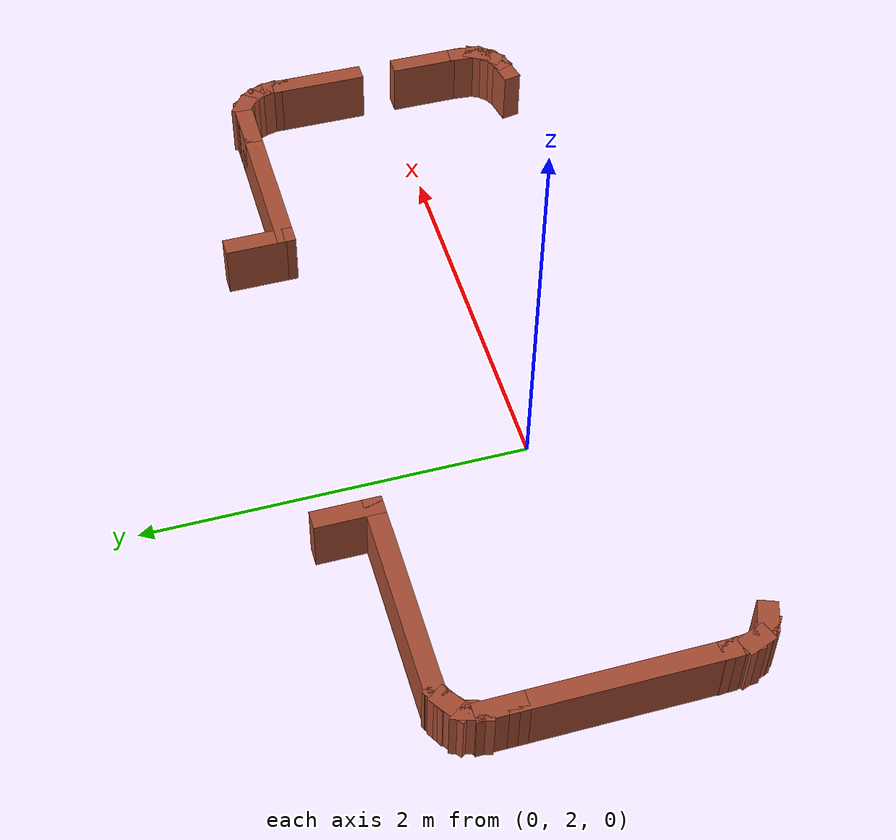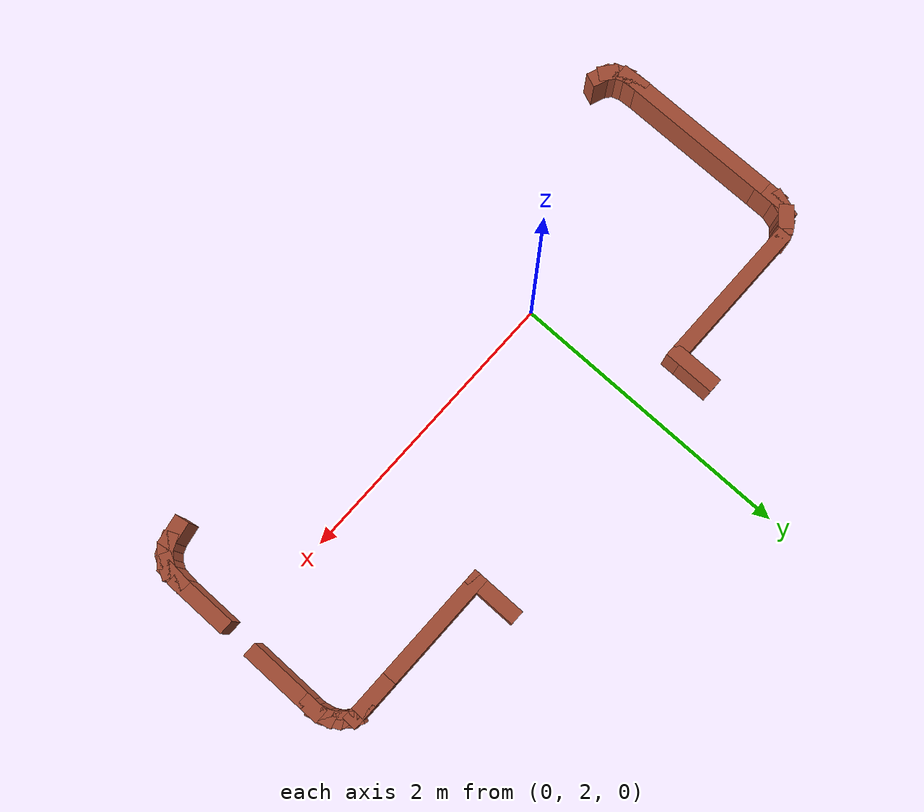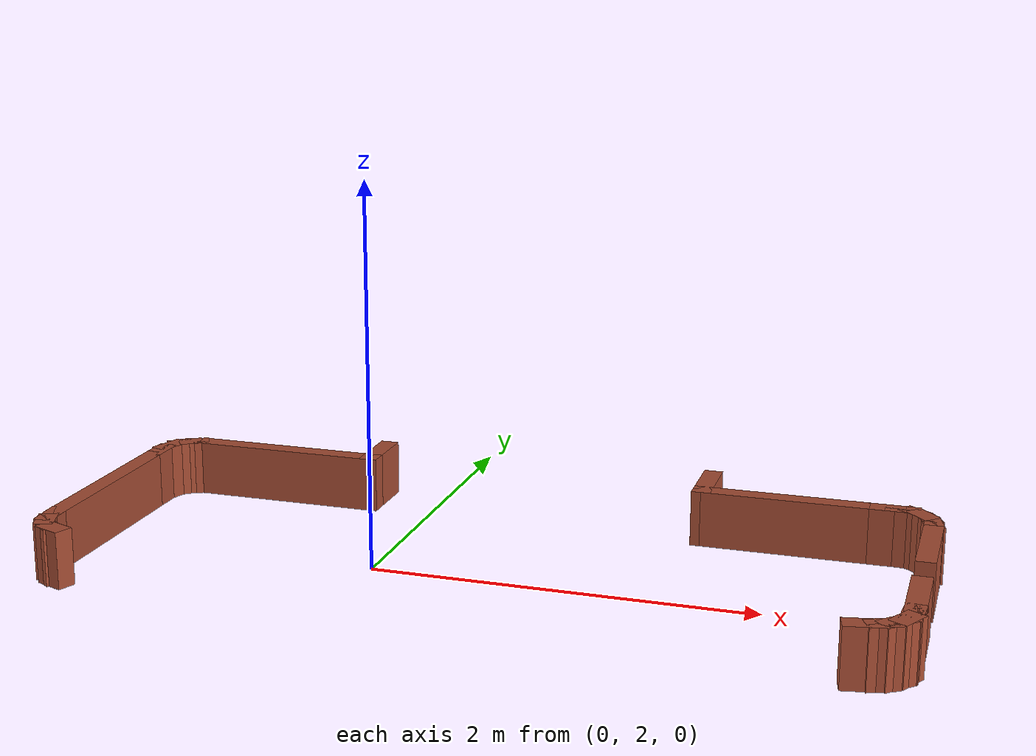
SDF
<sdf version="1.6">
 <model name="walls">
  <link name="Wall_33">
   <pose>-0.352583 3.02287 0 0 0 -1.5708</pose>
   <visual name="Wall_33_Visual">
    <pose>0 0 0.15 0 -0 0</pose>
    <geometry><box><size>0.357602 0.1 0.3</size></box></geometry>
    <material>
     <script><uri>file://media/materials/scripts/gazebo.material</uri><name>Gazebo/Bricks</name></script>
     <ambient>1 1 1 1</ambient>
    </material>
    <meta><layer>0</layer></meta>
   </visual>
   <collision name="Wall_33_Collision">
    <pose>0 0 0.15 0 -0 0</pose>
    <geometry><box><size>0.357602 0.1 0.3</size></box></geometry>
    <surface>
     <friction>
      <ode><mu>1</mu><mu2>1</mu2><fdir1>0 0 0</fdir1><slip1>0</slip1><slip2>0</slip2></ode>
      <torsional>
       <coefficient>1</coefficient>
       <patch_radius>0</patch_radius>
       <surface_radius>0</surface_radius>
       <use_patch_radius>1</use_patch_radius>
       <ode><slip>0</slip></ode>
      </torsional>
     </friction>
     <bounce><restitution_coefficient>0</restitution_coefficient><threshold>1e+06</threshold></bounce>
     <contact>
      <collide_without_contact>0</collide_without_contact>
      <collide_without_contact_bitmask>1</collide_without_contact_bitmask>
      <collide_bitmask>1</collide_bitmask>
      <ode>
       <soft_cfm>0</soft_cfm>
       <soft_erp>0.2</soft_erp>
       <kp>1e+13</kp>
       <kd>1</kd>
       <max_vel>0.01</max_vel>
       <min_depth>0</min_depth>
      </ode>
      <bullet>
       <split_impulse>1</split_impulse>
       <split_impulse_penetration_threshold>-0.01</split_impulse_penetration_threshold>
       <soft_cfm>0</soft_cfm>
       <soft_erp>0.2</soft_erp>
       <kp>1e+13</kp>
       <kd>1</kd>
      </bullet>
     </contact>
    </surface>
   </collision>
  </link>
  <link name="Wall_34">
   <pose>-0.854083 2.89387 0 0 -0 3.14159</pose>
   <visual name="Wall_34_Visual">
    <pose>0 0 0.15 0 -0 0</pose>
    <geometry><box><size>1.10348 0.1 0.3</size></box></geometry>
    <material>
     <script><uri>file://media/materials/scripts/gazebo.material</uri><name>Gazebo/Bricks</name></script>
     <ambient>1 1 1 1</ambient>
    </material>
    <meta><layer>0</layer></meta>
   </visual>
   <collision name="Wall_34_Collision">
    <pose>0 0 0.15 0 -0 0</pose>
    <geometry><box><size>1.10348 0.1 0.3</size></box></geometry>
    <surface>
     <friction>
      <ode><mu>1</mu><mu2>1</mu2><fdir1>0 0 0</fdir1><slip1>0</slip1><slip2>0</slip2></ode>
      <torsional>
       <coefficient>1</coefficient>
       <patch_radius>0</patch_radius>
       <surface_radius>0</surface_radius>
       <use_patch_radius>1</use_patch_radius>
       <ode><slip>0</slip></ode>
      </torsional>
     </friction>
     <bounce><restitution_coefficient>0</restitution_coefficient><threshold>1e+06</threshold></bounce>
     <contact>
      <collide_without_contact>0</collide_without_contact>
      <collide_without_contact_bitmask>1</collide_without_contact_bitmask>
      <collide_bitmask>1</collide_bitmask>
      <ode>
       <soft_cfm>0</soft_cfm>
       <soft_erp>0.2</soft_erp>
       <kp>1e+13</kp>
       <kd>1</kd>
       <max_vel>0.01</max_vel>
       <min_depth>0</min_depth>
      </ode>
      <bullet>
       <split_impulse>1</split_impulse>
       <split_impulse_penetration_threshold>-0.01</split_impulse_penetration_threshold>
       <soft_cfm>0</soft_cfm>
       <soft_erp>0.2</soft_erp>
       <kp>1e+13</kp>
       <kd>1</kd>
      </bullet>
     </contact>
    </surface>
   </collision>
  </link>
  <link name="Wall_36">
   <pose>-1.42108 2.87687 0 0 0 -2.69014</pose>
   <visual name="Wall_36_Visual">
    <pose>0 0 0.15 0 -0 0</pose>
    <geometry><box><size>0.136312 0.1 0.3</size></box></geometry>
    <material>
     <script><uri>file://media/materials/scripts/gazebo.material</uri><name>Gazebo/Bricks</name></script>
     <ambient>1 1 1 1</ambient>
    </material>
    <meta><layer>0</layer></meta>
   </visual>
   <collision name="Wall_36_Collision">
    <pose>0 0 0.15 0 -0 0</pose>
    <geometry><box><size>0.136312 0.1 0.3</size></box></geometry>
    <surface>
     <friction>
      <ode><mu>1</mu><mu2>1</mu2><fdir1>0 0 0</fdir1><slip1>0</slip1><slip2>0</slip2></ode>
      <torsional>
       <coefficient>1</coefficient>
       <patch_radius>0</patch_radius>
       <surface_radius>0</surface_radius>
       <use_patch_radius>1</use_patch_radius>
       <ode><slip>0</slip></ode>
      </torsional>
     </friction>
     <bounce><restitution_coefficient>0</restitution_coefficient><threshold>1e+06</threshold></bounce>
     <contact>
      <collide_without_contact>0</collide_without_contact>
      <collide_without_contact_bitmask>1</collide_without_contact_bitmask>
      <collide_bitmask>1</collide_bitmask>
      <ode>
       <soft_cfm>0</soft_cfm>
       <soft_erp>0.2</soft_erp>
       <kp>1e+13</kp>
       <kd>1</kd>
       <max_vel>0.01</max_vel>
       <min_depth>0</min_depth>
      </ode>
      <bullet>
       <split_impulse>1</split_impulse>
       <split_impulse_penetration_threshold>-0.01</split_impulse_penetration_threshold>
       <soft_cfm>0</soft_cfm>
       <soft_erp>0.2</soft_erp>
       <kp>1e+13</kp>
       <kd>1</kd>
      </bullet>
     </contact>
    </surface>
   </collision>
  </link>
  <link name="Wall_37">
   <pose>-1.45158 2.85937 0 0 0 -2.54539</pose>
   <visual name="Wall_37_Visual">
    <pose>0 0 0.15 0 -0 0</pose>
    <geometry><box><size>0.133838 0.1 0.3</size></box></geometry>
    <material>
     <script><uri>file://media/materials/scripts/gazebo.material</uri><name>Gazebo/Bricks</name></script>
     <ambient>1 1 1 1</ambient>
    </material>
    <meta><layer>0</layer></meta>
   </visual>
   <collision name="Wall_37_Collision">
    <pose>0 0 0.15 0 -0 0</pose>
    <geometry><box><size>0.133838 0.1 0.3</size></box></geometry>
    <surface>
     <friction>
      <ode><mu>1</mu><mu2>1</mu2><fdir1>0 0 0</fdir1><slip1>0</slip1><slip2>0</slip2></ode>
      <torsional>
       <coefficient>1</coefficient>
       <patch_radius>0</patch_radius>
       <surface_radius>0</surface_radius>
       <use_patch_radius>1</use_patch_radius>
       <ode><slip>0</slip></ode>
      </torsional>
     </friction>
     <bounce><restitution_coefficient>0</restitution_coefficient><threshold>1e+06</threshold></bounce>
     <contact>
      <collide_without_contact>0</collide_without_contact>
      <collide_without_contact_bitmask>1</collide_without_contact_bitmask>
      <collide_bitmask>1</collide_bitmask>
      <ode>
       <soft_cfm>0</soft_cfm>
       <soft_erp>0.2</soft_erp>
       <kp>1e+13</kp>
       <kd>1</kd>
       <max_vel>0.01</max_vel>
       <min_depth>0</min_depth>
      </ode>
      <bullet>
       <split_impulse>1</split_impulse>
       <split_impulse_penetration_threshold>-0.01</split_impulse_penetration_threshold>
       <soft_cfm>0</soft_cfm>
       <soft_erp>0.2</soft_erp>
       <kp>1e+13</kp>
       <kd>1</kd>
      </bullet>
     </contact>
    </surface>
   </collision>
  </link>
  <link name="Wall_38">
   <pose>-1.48958 2.83087 0 0 0 -2.47195</pose>
   <visual name="Wall_38_Visual">
    <pose>0 0 0.15 0 -0 0</pose>
    <geometry><box><size>0.161164 0.1 0.3</size></box></geometry>
    <material>
     <script><uri>file://media/materials/scripts/gazebo.material</uri><name>Gazebo/Bricks</name></script>
     <ambient>1 1 1 1</ambient>
    </material>
    <meta><layer>0</layer></meta>
   </visual>
   <collision name="Wall_38_Collision">
    <pose>0 0 0.15 0 -0 0</pose>
    <geometry><box><size>0.161164 0.1 0.3</size></box></geometry>
    <surface>
     <friction>
      <ode><mu>1</mu><mu2>1</mu2><fdir1>0 0 0</fdir1><slip1>0</slip1><slip2>0</slip2></ode>
      <torsional>
       <coefficient>1</coefficient>
       <patch_radius>0</patch_radius>
       <surface_radius>0</surface_radius>
       <use_patch_radius>1</use_patch_radius>
       <ode><slip>0</slip></ode>
      </torsional>
     </friction>
     <bounce><restitution_coefficient>0</restitution_coefficient><threshold>1e+06</threshold></bounce>
     <contact>
      <collide_without_contact>0</collide_without_contact>
      <collide_without_contact_bitmask>1</collide_without_contact_bitmask>
      <collide_bitmask>1</collide_bitmask>
      <ode>
       <soft_cfm>0</soft_cfm>
       <soft_erp>0.2</soft_erp>
       <kp>1e+13</kp>
       <kd>1</kd>
       <max_vel>0.01</max_vel>
       <min_depth>0</min_depth>
      </ode>
      <bullet>
       <split_impulse>1</split_impulse>
       <split_impulse_penetration_threshold>-0.01</split_impulse_penetration_threshold>
       <soft_cfm>0</soft_cfm>
       <soft_erp>0.2</soft_erp>
       <kp>1e+13</kp>
       <kd>1</kd>
      </bullet>
     </contact>
    </surface>
   </collision>
  </link>
  <link name="Wall_39">
   <pose>-1.52908 2.76337 0 0 0 -1.88013</pose>
   <visual name="Wall_39_Visual">
    <pose>0 0 0.15 0 -0 0</pose>
    <geometry><box><size>0.201833 0.1 0.3</size></box></geometry>
    <material>
     <script><uri>file://media/materials/scripts/gazebo.material</uri><name>Gazebo/Bricks</name></script>
     <ambient>1 1 1 1</ambient>
    </material>
    <meta><layer>0</layer></meta>
   </visual>
   <collision name="Wall_39_Collision">
    <pose>0 0 0.15 0 -0 0</pose>
    <geometry><box><size>0.201833 0.1 0.3</size></box></geometry>
    <surface>
     <friction>
      <ode><mu>1</mu><mu2>1</mu2><fdir1>0 0 0</fdir1><slip1>0</slip1><slip2>0</slip2></ode>
      <torsional>
       <coefficient>1</coefficient>
       <patch_radius>0</patch_radius>
       <surface_radius>0</surface_radius>
       <use_patch_radius>1</use_patch_radius>
       <ode><slip>0</slip></ode>
      </torsional>
     </friction>
     <bounce><restitution_coefficient>0</restitution_coefficient><threshold>1e+06</threshold></bounce>
     <contact>
      <collide_without_contact>0</collide_without_contact>
      <collide_without_contact_bitmask>1</collide_without_contact_bitmask>
      <collide_bitmask>1</collide_bitmask>
      <ode>
       <soft_cfm>0</soft_cfm>
       <soft_erp>0.2</soft_erp>
       <kp>1e+13</kp>
       <kd>1</kd>
       <max_vel>0.01</max_vel>
       <min_depth>0</min_depth>
      </ode>
      <bullet>
       <split_impulse>1</split_impulse>
       <split_impulse_penetration_threshold>-0.01</split_impulse_penetration_threshold>
       <soft_cfm>0</soft_cfm>
       <soft_erp>0.2</soft_erp>
       <kp>1e+13</kp>
       <kd>1</kd>
      </bullet>
     </contact>
    </surface>
   </collision>
  </link>
  <link name="Wall_40">
   <pose>-1.54458 2.63987 0 0 0 -1.5708</pose>
   <visual name="Wall_40_Visual">
    <pose>0 0 0.15 0 -0 0</pose>
    <geometry><box><size>0.25 0.1 0.3</size></box></geometry>
    <material>
     <script><uri>file://media/materials/scripts/gazebo.material</uri><name>Gazebo/Bricks</name></script>
     <ambient>1 1 1 1</ambient>
    </material>
    <meta><layer>0</layer></meta>
   </visual>
   <collision name="Wall_40_Collision">
    <pose>0 0 0.15 0 -0 0</pose>
    <geometry><box><size>0.25 0.1 0.3</size></box></geometry>
    <surface>
     <friction>
      <ode><mu>1</mu><mu2>1</mu2><fdir1>0 0 0</fdir1><slip1>0</slip1><slip2>0</slip2></ode>
      <torsional>
       <coefficient>1</coefficient>
       <patch_radius>0</patch_radius>
       <surface_radius>0</surface_radius>
       <use_patch_radius>1</use_patch_radius>
       <ode><slip>0</slip></ode>
      </torsional>
     </friction>
     <bounce><restitution_coefficient>0</restitution_coefficient><threshold>1e+06</threshold></bounce>
     <contact>
      <collide_without_contact>0</collide_without_contact>
      <collide_without_contact_bitmask>1</collide_without_contact_bitmask>
      <collide_bitmask>1</collide_bitmask>
      <ode>
       <soft_cfm>0</soft_cfm>
       <soft_erp>0.2</soft_erp>
       <kp>1e+13</kp>
       <kd>1</kd>
       <max_vel>0.01</max_vel>
       <min_depth>0</min_depth>
      </ode>
      <bullet>
       <split_impulse>1</split_impulse>
       <split_impulse_penetration_threshold>-0.01</split_impulse_penetration_threshold>
       <soft_cfm>0</soft_cfm>
       <soft_erp>0.2</soft_erp>
       <kp>1e+13</kp>
       <kd>1</kd>
      </bullet>
     </contact>
    </surface>
   </collision>
  </link>
  <link name="Wall_41">
   <pose>-1.54358 2.06137 0 0 0 -1.56881</pose>
   <visual name="Wall_41_Visual">
    <pose>0 0 0.15 0 -0 0</pose>
    <geometry><box><size>1.107 0.1 0.3</size></box></geometry>
    <material>
     <script><uri>file://media/materials/scripts/gazebo.material</uri><name>Gazebo/Bricks</name></script>
     <ambient>1 1 1 1</ambient>
    </material>
    <meta><layer>0</layer></meta>
   </visual>
   <collision name="Wall_41_Collision">
    <pose>0 0 0.15 0 -0 0</pose>
    <geometry><box><size>1.107 0.1 0.3</size></box></geometry>
    <surface>
     <friction>
      <ode><mu>1</mu><mu2>1</mu2><fdir1>0 0 0</fdir1><slip1>0</slip1><slip2>0</slip2></ode>
      <torsional>
       <coefficient>1</coefficient>
       <patch_radius>0</patch_radius>
       <surface_radius>0</surface_radius>
       <use_patch_radius>1</use_patch_radius>
       <ode><slip>0</slip></ode>
      </torsional>
     </friction>
     <bounce><restitution_coefficient>0</restitution_coefficient><threshold>1e+06</threshold></bounce>
     <contact>
      <collide_without_contact>0</collide_without_contact>
      <collide_without_contact_bitmask>1</collide_without_contact_bitmask>
      <collide_bitmask>1</collide_bitmask>
      <ode>
       <soft_cfm>0</soft_cfm>
       <soft_erp>0.2</soft_erp>
       <kp>1e+13</kp>
       <kd>1</kd>
       <max_vel>0.01</max_vel>
       <min_depth>0</min_depth>
      </ode>
      <bullet>
       <split_impulse>1</split_impulse>
       <split_impulse_penetration_threshold>-0.01</split_impulse_penetration_threshold>
       <soft_cfm>0</soft_cfm>
       <soft_erp>0.2</soft_erp>
       <kp>1e+13</kp>
       <kd>1</kd>
      </bullet>
     </contact>
    </surface>
   </collision>
  </link>
  <link name="Wall_42">
   <pose>-1.53958 1.50687 0 0 0 -1.51204</pose>
   <visual name="Wall_42_Visual">
    <pose>0 0 0.15 0 -0 0</pose>
    <geometry><box><size>0.2018 0.1 0.3</size></box></geometry>
    <material>
     <script><uri>file://media/materials/scripts/gazebo.material</uri><name>Gazebo/Bricks</name></script>
     <ambient>1 1 1 1</ambient>
    </material>
    <meta><layer>0</layer></meta>
   </visual>
   <collision name="Wall_42_Collision">
    <pose>0 0 0.15 0 -0 0</pose>
    <geometry><box><size>0.2018 0.1 0.3</size></box></geometry>
    <surface>
     <friction>
      <ode><mu>1</mu><mu2>1</mu2><fdir1>0 0 0</fdir1><slip1>0</slip1><slip2>0</slip2></ode>
      <torsional>
       <coefficient>1</coefficient>
       <patch_radius>0</patch_radius>
       <surface_radius>0</surface_radius>
       <use_patch_radius>1</use_patch_radius>
       <ode><slip>0</slip></ode>
      </torsional>
     </friction>
     <bounce><restitution_coefficient>0</restitution_coefficient><threshold>1e+06</threshold></bounce>
     <contact>
      <collide_without_contact>0</collide_without_contact>
      <collide_without_contact_bitmask>1</collide_without_contact_bitmask>
      <collide_bitmask>1</collide_bitmask>
      <ode>
       <soft_cfm>0</soft_cfm>
       <soft_erp>0.2</soft_erp>
       <kp>1e+13</kp>
       <kd>1</kd>
       <max_vel>0.01</max_vel>
       <min_depth>0</min_depth>
      </ode>
      <bullet>
       <split_impulse>1</split_impulse>
       <split_impulse_penetration_threshold>-0.01</split_impulse_penetration_threshold>
       <soft_cfm>0</soft_cfm>
       <soft_erp>0.2</soft_erp>
       <kp>1e+13</kp>
       <kd>1</kd>
      </bullet>
     </contact>
    </surface>
   </collision>
  </link>
  <link name="Wall_43">
   <pose>-1.52658 1.42887 0 0 0 -1.21609</pose>
   <visual name="Wall_43_Visual">
    <pose>0 0 0.15 0 -0 0</pose>
    <geometry><box><size>0.157996 0.1 0.3</size></box></geometry>
    <material>
     <script><uri>file://media/materials/scripts/gazebo.material</uri><name>Gazebo/Bricks</name></script>
     <ambient>1 1 1 1</ambient>
    </material>
    <meta><layer>0</layer></meta>
   </visual>
   <collision name="Wall_43_Collision">
    <pose>0 0 0.15 0 -0 0</pose>
    <geometry><box><size>0.157996 0.1 0.3</size></box></geometry>
    <surface>
     <friction>
      <ode><mu>1</mu><mu2>1</mu2><fdir1>0 0 0</fdir1><slip1>0</slip1><slip2>0</slip2></ode>
      <torsional>
       <coefficient>1</coefficient>
       <patch_radius>0</patch_radius>
       <surface_radius>0</surface_radius>
       <use_patch_radius>1</use_patch_radius>
       <ode><slip>0</slip></ode>
      </torsional>
     </friction>
     <bounce><restitution_coefficient>0</restitution_coefficient><threshold>1e+06</threshold></bounce>
     <contact>
      <collide_without_contact>0</collide_without_contact>
      <collide_without_contact_bitmask>1</collide_without_contact_bitmask>
      <collide_bitmask>1</collide_bitmask>
      <ode>
       <soft_cfm>0</soft_cfm>
       <soft_erp>0.2</soft_erp>
       <kp>1e+13</kp>
       <kd>1</kd>
       <max_vel>0.01</max_vel>
       <min_depth>0</min_depth>
      </ode>
      <bullet>
       <split_impulse>1</split_impulse>
       <split_impulse_penetration_threshold>-0.01</split_impulse_penetration_threshold>
       <soft_cfm>0</soft_cfm>
       <soft_erp>0.2</soft_erp>
       <kp>1e+13</kp>
       <kd>1</kd>
      </bullet>
     </contact>
    </surface>
   </collision>
  </link>
  <link name="Wall_45">
   <pose>-1.47208 1.35537 0 0 0 -0.678662</pose>
   <visual name="Wall_45_Visual">
    <pose>0 0 0.15 0 -0 0</pose>
    <geometry><box><size>0.140426 0.1 0.3</size></box></geometry>
    <material>
     <script><uri>file://media/materials/scripts/gazebo.material</uri><name>Gazebo/Bricks</name></script>
     <ambient>1 1 1 1</ambient>
    </material>
    <meta><layer>0</layer></meta>
   </visual>
   <collision name="Wall_45_Collision">
    <pose>0 0 0.15 0 -0 0</pose>
    <geometry><box><size>0.140426 0.1 0.3</size></box></geometry>
    <surface>
     <friction>
      <ode><mu>1</mu><mu2>1</mu2><fdir1>0 0 0</fdir1><slip1>0</slip1><slip2>0</slip2></ode>
      <torsional>
       <coefficient>1</coefficient>
       <patch_radius>0</patch_radius>
       <surface_radius>0</surface_radius>
       <use_patch_radius>1</use_patch_radius>
       <ode><slip>0</slip></ode>
      </torsional>
     </friction>
     <bounce><restitution_coefficient>0</restitution_coefficient><threshold>1e+06</threshold></bounce>
     <contact>
      <collide_without_contact>0</collide_without_contact>
      <collide_without_contact_bitmask>1</collide_without_contact_bitmask>
      <collide_bitmask>1</collide_bitmask>
      <ode>
       <soft_cfm>0</soft_cfm>
       <soft_erp>0.2</soft_erp>
       <kp>1e+13</kp>
       <kd>1</kd>
       <max_vel>0.01</max_vel>
       <min_depth>0</min_depth>
      </ode>
      <bullet>
       <split_impulse>1</split_impulse>
       <split_impulse_penetration_threshold>-0.01</split_impulse_penetration_threshold>
       <soft_cfm>0</soft_cfm>
       <soft_erp>0.2</soft_erp>
       <kp>1e+13</kp>
       <kd>1</kd>
      </bullet>
     </contact>
    </surface>
   </collision>
  </link>
  <link name="Wall_46">
   <pose>-1.42708 1.33137 0 0 0 -0.371709</pose>
   <visual name="Wall_46_Visual">
    <pose>0 0 0.15 0 -0 0</pose>
    <geometry><box><size>0.162952 0.1 0.3</size></box></geometry>
    <material>
     <script><uri>file://media/materials/scripts/gazebo.material</uri><name>Gazebo/Bricks</name></script>
     <ambient>1 1 1 1</ambient>
    </material>
    <meta><layer>0</layer></meta>
   </visual>
   <collision name="Wall_46_Collision">
    <pose>0 0 0.15 0 -0 0</pose>
    <geometry><box><size>0.162952 0.1 0.3</size></box></geometry>
    <surface>
     <friction>
      <ode><mu>1</mu><mu2>1</mu2><fdir1>0 0 0</fdir1><slip1>0</slip1><slip2>0</slip2></ode>
      <torsional>
       <coefficient>1</coefficient>
       <patch_radius>0</patch_radius>
       <surface_radius>0</surface_radius>
       <use_patch_radius>1</use_patch_radius>
       <ode><slip>0</slip></ode>
      </torsional>
     </friction>
     <bounce><restitution_coefficient>0</restitution_coefficient><threshold>1e+06</threshold></bounce>
     <contact>
      <collide_without_contact>0</collide_without_contact>
      <collide_without_contact_bitmask>1</collide_without_contact_bitmask>
      <collide_bitmask>1</collide_bitmask>
      <ode>
       <soft_cfm>0</soft_cfm>
       <soft_erp>0.2</soft_erp>
       <kp>1e+13</kp>
       <kd>1</kd>
       <max_vel>0.01</max_vel>
       <min_depth>0</min_depth>
      </ode>
      <bullet>
       <split_impulse>1</split_impulse>
       <split_impulse_penetration_threshold>-0.01</split_impulse_penetration_threshold>
       <soft_cfm>0</soft_cfm>
       <soft_erp>0.2</soft_erp>
       <kp>1e+13</kp>
       <kd>1</kd>
      </bullet>
     </contact>
    </surface>
   </collision>
  </link>
  <link name="Wall_73">
   <pose>1.52899 3.03515 0 0 0 -1.56677</pose>
   <visual name="Wall_73_Visual">
    <pose>0 0 0.15 0 -0 0</pose>
    <geometry><box><size>0.383454 0.1 0.3</size></box></geometry>
    <material>
     <script><uri>file://media/materials/scripts/gazebo.material</uri><name>Gazebo/Bricks</name></script>
     <ambient>1 1 1 1</ambient>
    </material>
    <meta><layer>0</layer></meta>
   </visual>
   <collision name="Wall_73_Collision">
    <pose>0 0 0.15 0 -0 0</pose>
    <geometry><box><size>0.383454 0.1 0.3</size></box></geometry>
    <surface>
     <friction>
      <ode><mu>1</mu><mu2>1</mu2><fdir1>0 0 0</fdir1><slip1>0</slip1><slip2>0</slip2></ode>
      <torsional>
       <coefficient>1</coefficient>
       <patch_radius>0</patch_radius>
       <surface_radius>0</surface_radius>
       <use_patch_radius>1</use_patch_radius>
       <ode><slip>0</slip></ode>
      </torsional>
     </friction>
     <bounce><restitution_coefficient>0</restitution_coefficient><threshold>1e+06</threshold></bounce>
     <contact>
      <collide_without_contact>0</collide_without_contact>
      <collide_without_contact_bitmask>1</collide_without_contact_bitmask>
      <collide_bitmask>1</collide_bitmask>
      <ode>
       <soft_cfm>0</soft_cfm>
       <soft_erp>0.2</soft_erp>
       <kp>1e+13</kp>
       <kd>1</kd>
       <max_vel>0.01</max_vel>
       <min_depth>0</min_depth>
      </ode>
      <bullet>
       <split_impulse>1</split_impulse>
       <split_impulse_penetration_threshold>-0.01</split_impulse_penetration_threshold>
       <soft_cfm>0</soft_cfm>
       <soft_erp>0.2</soft_erp>
       <kp>1e+13</kp>
       <kd>1</kd>
      </bullet>
     </contact>
    </surface>
   </collision>
  </link>
  <link name="Wall_74">
   <pose>1.9399 2.89342 0 0 -0 0</pose>
   <visual name="Wall_74_Visual">
    <pose>0 0 0.15 0 -0 0</pose>
    <geometry><box><size>0.920691 0.1 0.3</size></box></geometry>
    <material>
     <script><uri>file://media/materials/scripts/gazebo.material</uri><name>Gazebo/Bricks</name></script>
     <ambient>1 1 1 1</ambient>
    </material>
    <meta><layer>0</layer></meta>
   </visual>
   <collision name="Wall_74_Collision">
    <pose>0 0 0.15 0 -0 0</pose>
    <geometry><box><size>0.920691 0.1 0.3</size></box></geometry>
    <surface>
     <friction>
      <ode><mu>1</mu><mu2>1</mu2><fdir1>0 0 0</fdir1><slip1>0</slip1><slip2>0</slip2></ode>
      <torsional>
       <coefficient>1</coefficient>
       <patch_radius>0</patch_radius>
       <surface_radius>0</surface_radius>
       <use_patch_radius>1</use_patch_radius>
       <ode><slip>0</slip></ode>
      </torsional>
     </friction>
     <bounce><restitution_coefficient>0</restitution_coefficient><threshold>1e+06</threshold></bounce>
     <contact>
      <collide_without_contact>0</collide_without_contact>
      <collide_without_contact_bitmask>1</collide_without_contact_bitmask>
      <collide_bitmask>1</collide_bitmask>
      <ode>
       <soft_cfm>0</soft_cfm>
       <soft_erp>0.2</soft_erp>
       <kp>1e+13</kp>
       <kd>1</kd>
       <max_vel>0.01</max_vel>
       <min_depth>0</min_depth>
      </ode>
      <bullet>
       <split_impulse>1</split_impulse>
       <split_impulse_penetration_threshold>-0.01</split_impulse_penetration_threshold>
       <soft_cfm>0</soft_cfm>
       <soft_erp>0.2</soft_erp>
       <kp>1e+13</kp>
       <kd>1</kd>
      </bullet>
     </contact>
    </surface>
   </collision>
  </link>
  <link name="Wall_75">
   <pose>2.44144 2.89342 0 0 -0 0</pose>
   <visual name="Wall_75_Visual">
    <pose>0 0 0.15 0 -0 0</pose>
    <geometry><box><size>0.278231 0.1 0.3</size></box></geometry>
    <material>
     <script><uri>file://media/materials/scripts/gazebo.material</uri><name>Gazebo/Bricks</name></script>
     <ambient>1 1 1 1</ambient>
    </material>
    <meta><layer>0</layer></meta>
   </visual>
   <collision name="Wall_75_Collision">
    <pose>0 0 0.15 0 -0 0</pose>
    <geometry><box><size>0.278231 0.1 0.3</size></box></geometry>
    <surface>
     <friction>
      <ode><mu>1</mu><mu2>1</mu2><fdir1>0 0 0</fdir1><slip1>0</slip1><slip2>0</slip2></ode>
      <torsional>
       <coefficient>1</coefficient>
       <patch_radius>0</patch_radius>
       <surface_radius>0</surface_radius>
       <use_patch_radius>1</use_patch_radius>
       <ode><slip>0</slip></ode>
      </torsional>
     </friction>
     <bounce><restitution_coefficient>0</restitution_coefficient><threshold>1e+06</threshold></bounce>
     <contact>
      <collide_without_contact>0</collide_without_contact>
      <collide_without_contact_bitmask>1</collide_without_contact_bitmask>
      <collide_bitmask>1</collide_bitmask>
      <ode>
       <soft_cfm>0</soft_cfm>
       <soft_erp>0.2</soft_erp>
       <kp>1e+13</kp>
       <kd>1</kd>
       <max_vel>0.01</max_vel>
       <min_depth>0</min_depth>
      </ode>
      <bullet>
       <split_impulse>1</split_impulse>
       <split_impulse_penetration_threshold>-0.01</split_impulse_penetration_threshold>
       <soft_cfm>0</soft_cfm>
       <soft_erp>0.2</soft_erp>
       <kp>1e+13</kp>
       <kd>1</kd>
      </bullet>
     </contact>
    </surface>
   </collision>
  </link>
  <link name="Wall_76">
   <pose>2.56795 2.89265 0 0 0 -0.019606</pose>
   <visual name="Wall_76_Visual">
    <pose>0 0 0.15 0 -0 0</pose>
    <geometry><box><size>0.178952 0.1 0.3</size></box></geometry>
    <material>
     <script><uri>file://media/materials/scripts/gazebo.material</uri><name>Gazebo/Bricks</name></script>
     <ambient>1 1 1 1</ambient>
    </material>
    <meta><layer>0</layer></meta>
   </visual>
   <collision name="Wall_76_Collision">
    <pose>0 0 0.15 0 -0 0</pose>
    <geometry><box><size>0.178952 0.1 0.3</size></box></geometry>
    <surface>
     <friction>
      <ode><mu>1</mu><mu2>1</mu2><fdir1>0 0 0</fdir1><slip1>0</slip1><slip2>0</slip2></ode>
      <torsional>
       <coefficient>1</coefficient>
       <patch_radius>0</patch_radius>
       <surface_radius>0</surface_radius>
       <use_patch_radius>1</use_patch_radius>
       <ode><slip>0</slip></ode>
      </torsional>
     </friction>
     <bounce><restitution_coefficient>0</restitution_coefficient><threshold>1e+06</threshold></bounce>
     <contact>
      <collide_without_contact>0</collide_without_contact>
      <collide_without_contact_bitmask>1</collide_without_contact_bitmask>
      <collide_bitmask>1</collide_bitmask>
      <ode>
       <soft_cfm>0</soft_cfm>
       <soft_erp>0.2</soft_erp>
       <kp>1e+13</kp>
       <kd>1</kd>
       <max_vel>0.01</max_vel>
       <min_depth>0</min_depth>
      </ode>
      <bullet>
       <split_impulse>1</split_impulse>
       <split_impulse_penetration_threshold>-0.01</split_impulse_penetration_threshold>
       <soft_cfm>0</soft_cfm>
       <soft_erp>0.2</soft_erp>
       <kp>1e+13</kp>
       <kd>1</kd>
      </bullet>
     </contact>
    </surface>
   </collision>
  </link>
  <link name="Wall_77">
   <pose>2.62942 2.87637 0 0 0 -0.61377</pose>
   <visual name="Wall_77_Visual">
    <pose>0 0 0.15 0 -0 0</pose>
    <geometry><box><size>0.153882 0.1 0.3</size></box></geometry>
    <material>
     <script><uri>file://media/materials/scripts/gazebo.material</uri><name>Gazebo/Bricks</name></script>
     <ambient>1 1 1 1</ambient>
    </material>
    <meta><layer>0</layer></meta>
   </visual>
   <collision name="Wall_77_Collision">
    <pose>0 0 0.15 0 -0 0</pose>
    <geometry><box><size>0.153882 0.1 0.3</size></box></geometry>
    <surface>
     <friction>
      <ode><mu>1</mu><mu2>1</mu2><fdir1>0 0 0</fdir1><slip1>0</slip1><slip2>0</slip2></ode>
      <torsional>
       <coefficient>1</coefficient>
       <patch_radius>0</patch_radius>
       <surface_radius>0</surface_radius>
       <use_patch_radius>1</use_patch_radius>
       <ode><slip>0</slip></ode>
      </torsional>
     </friction>
     <bounce><restitution_coefficient>0</restitution_coefficient><threshold>1e+06</threshold></bounce>
     <contact>
      <collide_without_contact>0</collide_without_contact>
      <collide_without_contact_bitmask>1</collide_without_contact_bitmask>
      <collide_bitmask>1</collide_bitmask>
      <ode>
       <soft_cfm>0</soft_cfm>
       <soft_erp>0.2</soft_erp>
       <kp>1e+13</kp>
       <kd>1</kd>
       <max_vel>0.01</max_vel>
       <min_depth>0</min_depth>
      </ode>
      <bullet>
       <split_impulse>1</split_impulse>
       <split_impulse_penetration_threshold>-0.01</split_impulse_penetration_threshold>
       <soft_cfm>0</soft_cfm>
       <soft_erp>0.2</soft_erp>
       <kp>1e+13</kp>
       <kd>1</kd>
      </bullet>
     </contact>
    </surface>
   </collision>
  </link>
  <link name="Wall_78">
   <pose>2.67142 2.83887 0 0 0 -0.832981</pose>
   <visual name="Wall_78_Visual">
    <pose>0 0 0.15 0 -0 0</pose>
    <geometry><box><size>0.159636 0.1 0.3</size></box></geometry>
    <material>
     <script><uri>file://media/materials/scripts/gazebo.material</uri><name>Gazebo/Bricks</name></script>
     <ambient>1 1 1 1</ambient>
    </material>
    <meta><layer>0</layer></meta>
   </visual>
   <collision name="Wall_78_Collision">
    <pose>0 0 0.15 0 -0 0</pose>
    <geometry><box><size>0.159636 0.1 0.3</size></box></geometry>
    <surface>
     <friction>
      <ode><mu>1</mu><mu2>1</mu2><fdir1>0 0 0</fdir1><slip1>0</slip1><slip2>0</slip2></ode>
      <torsional>
       <coefficient>1</coefficient>
       <patch_radius>0</patch_radius>
       <surface_radius>0</surface_radius>
       <use_patch_radius>1</use_patch_radius>
       <ode><slip>0</slip></ode>
      </torsional>
     </friction>
     <bounce><restitution_coefficient>0</restitution_coefficient><threshold>1e+06</threshold></bounce>
     <contact>
      <collide_without_contact>0</collide_without_contact>
      <collide_without_contact_bitmask>1</collide_without_contact_bitmask>
      <collide_bitmask>1</collide_bitmask>
      <ode>
       <soft_cfm>0</soft_cfm>
       <soft_erp>0.2</soft_erp>
       <kp>1e+13</kp>
       <kd>1</kd>
       <max_vel>0.01</max_vel>
       <min_depth>0</min_depth>
      </ode>
      <bullet>
       <split_impulse>1</split_impulse>
       <split_impulse_penetration_threshold>-0.01</split_impulse_penetration_threshold>
       <soft_cfm>0</soft_cfm>
       <soft_erp>0.2</soft_erp>
       <kp>1e+13</kp>
       <kd>1</kd>
      </bullet>
     </contact>
    </surface>
   </collision>
  </link>
  <link name="Wall_79">
   <pose>2.70292 2.79487 0 0 0 -1.08913</pose>
   <visual name="Wall_79_Visual">
    <pose>0 0 0.15 0 -0 0</pose>
    <geometry><box><size>0.149409 0.1 0.3</size></box></geometry>
    <material>
     <script><uri>file://media/materials/scripts/gazebo.material</uri><name>Gazebo/Bricks</name></script>
     <ambient>1 1 1 1</ambient>
    </material>
    <meta><layer>0</layer></meta>
   </visual>
   <collision name="Wall_79_Collision">
    <pose>0 0 0.15 0 -0 0</pose>
    <geometry><box><size>0.149409 0.1 0.3</size></box></geometry>
    <surface>
     <friction>
      <ode><mu>1</mu><mu2>1</mu2><fdir1>0 0 0</fdir1><slip1>0</slip1><slip2>0</slip2></ode>
      <torsional>
       <coefficient>1</coefficient>
       <patch_radius>0</patch_radius>
       <surface_radius>0</surface_radius>
       <use_patch_radius>1</use_patch_radius>
       <ode><slip>0</slip></ode>
      </torsional>
     </friction>
     <bounce><restitution_coefficient>0</restitution_coefficient><threshold>1e+06</threshold></bounce>
     <contact>
      <collide_without_contact>0</collide_without_contact>
      <collide_without_contact_bitmask>1</collide_without_contact_bitmask>
      <collide_bitmask>1</collide_bitmask>
      <ode>
       <soft_cfm>0</soft_cfm>
       <soft_erp>0.2</soft_erp>
       <kp>1e+13</kp>
       <kd>1</kd>
       <max_vel>0.01</max_vel>
       <min_depth>0</min_depth>
      </ode>
      <bullet>
       <split_impulse>1</split_impulse>
       <split_impulse_penetration_threshold>-0.01</split_impulse_penetration_threshold>
       <soft_cfm>0</soft_cfm>
       <soft_erp>0.2</soft_erp>
       <kp>1e+13</kp>
       <kd>1</kd>
      </bullet>
     </contact>
    </surface>
   </collision>
  </link>
  <link name="Wall_80">
   <pose>2.72442 2.73387 0 0 0 -1.31979</pose>
   <visual name="Wall_80_Visual">
    <pose>0 0 0.15 0 -0 0</pose>
    <geometry><box><size>0.180523 0.1 0.3</size></box></geometry>
    <material>
     <script><uri>file://media/materials/scripts/gazebo.material</uri><name>Gazebo/Bricks</name></script>
     <ambient>1 1 1 1</ambient>
    </material>
    <meta><layer>0</layer></meta>
   </visual>
   <collision name="Wall_80_Collision">
    <pose>0 0 0.15 0 -0 0</pose>
    <geometry><box><size>0.180523 0.1 0.3</size></box></geometry>
    <surface>
     <friction>
      <ode><mu>1</mu><mu2>1</mu2><fdir1>0 0 0</fdir1><slip1>0</slip1><slip2>0</slip2></ode>
      <torsional>
       <coefficient>1</coefficient>
       <patch_radius>0</patch_radius>
       <surface_radius>0</surface_radius>
       <use_patch_radius>1</use_patch_radius>
       <ode><slip>0</slip></ode>
      </torsional>
     </friction>
     <bounce><restitution_coefficient>0</restitution_coefficient><threshold>1e+06</threshold></bounce>
     <contact>
      <collide_without_contact>0</collide_without_contact>
      <collide_without_contact_bitmask>1</collide_without_contact_bitmask>
      <collide_bitmask>1</collide_bitmask>
      <ode>
       <soft_cfm>0</soft_cfm>
       <soft_erp>0.2</soft_erp>
       <kp>1e+13</kp>
       <kd>1</kd>
       <max_vel>0.01</max_vel>
       <min_depth>0</min_depth>
      </ode>
      <bullet>
       <split_impulse>1</split_impulse>
       <split_impulse_penetration_threshold>-0.01</split_impulse_penetration_threshold>
       <soft_cfm>0</soft_cfm>
       <soft_erp>0.2</soft_erp>
       <kp>1e+13</kp>
       <kd>1</kd>
      </bullet>
     </contact>
    </surface>
   </collision>
  </link>
  <link name="Wall_81">
   <pose>2.73442 2.66637 0 0 0 -1.5708</pose>
   <visual name="Wall_81_Visual">
    <pose>0 0 0.15 0 -0 0</pose>
    <geometry><box><size>0.157 0.1 0.3</size></box></geometry>
    <material>
     <script><uri>file://media/materials/scripts/gazebo.material</uri><name>Gazebo/Bricks</name></script>
     <ambient>1 1 1 1</ambient>
    </material>
    <meta><layer>0</layer></meta>
   </visual>
   <collision name="Wall_81_Collision">
    <pose>0 0 0.15 0 -0 0</pose>
    <geometry><box><size>0.157 0.1 0.3</size></box></geometry>
    <surface>
     <friction>
      <ode><mu>1</mu><mu2>1</mu2><fdir1>0 0 0</fdir1><slip1>0</slip1><slip2>0</slip2></ode>
      <torsional>
       <coefficient>1</coefficient>
       <patch_radius>0</patch_radius>
       <surface_radius>0</surface_radius>
       <use_patch_radius>1</use_patch_radius>
       <ode><slip>0</slip></ode>
      </torsional>
     </friction>
     <bounce><restitution_coefficient>0</restitution_coefficient><threshold>1e+06</threshold></bounce>
     <contact>
      <collide_without_contact>0</collide_without_contact>
      <collide_without_contact_bitmask>1</collide_without_contact_bitmask>
      <collide_bitmask>1</collide_bitmask>
      <ode>
       <soft_cfm>0</soft_cfm>
       <soft_erp>0.2</soft_erp>
       <kp>1e+13</kp>
       <kd>1</kd>
       <max_vel>0.01</max_vel>
       <min_depth>0</min_depth>
      </ode>
      <bullet>
       <split_impulse>1</split_impulse>
       <split_impulse_penetration_threshold>-0.01</split_impulse_penetration_threshold>
       <soft_cfm>0</soft_cfm>
       <soft_erp>0.2</soft_erp>
       <kp>1e+13</kp>
       <kd>1</kd>
      </bullet>
     </contact>
    </surface>
   </collision>
  </link>
  <link name="Wall_82">
   <pose>2.73403 2.42058 0 0 0 -1.57255</pose>
   <visual name="Wall_82_Visual">
    <pose>0 0 0.15 0 -0 0</pose>
    <geometry><box><size>0.53458 0.1 0.3</size></box></geometry>
    <material>
     <script><uri>file://media/materials/scripts/gazebo.material</uri><name>Gazebo/Bricks</name></script>
     <ambient>1 1 1 1</ambient>
    </material>
    <meta><layer>0</layer></meta>
   </visual>
   <collision name="Wall_82_Collision">
    <pose>0 0 0.15 0 -0 0</pose>
    <geometry><box><size>0.53458 0.1 0.3</size></box></geometry>
    <surface>
     <friction>
      <ode><mu>1</mu><mu2>1</mu2><fdir1>0 0 0</fdir1><slip1>0</slip1><slip2>0</slip2></ode>
      <torsional>
       <coefficient>1</coefficient>
       <patch_radius>0</patch_radius>
       <surface_radius>0</surface_radius>
       <use_patch_radius>1</use_patch_radius>
       <ode><slip>0</slip></ode>
      </torsional>
     </friction>
     <bounce><restitution_coefficient>0</restitution_coefficient><threshold>1e+06</threshold></bounce>
     <contact>
      <collide_without_contact>0</collide_without_contact>
      <collide_without_contact_bitmask>1</collide_without_contact_bitmask>
      <collide_bitmask>1</collide_bitmask>
      <ode>
       <soft_cfm>0</soft_cfm>
       <soft_erp>0.2</soft_erp>
       <kp>1e+13</kp>
       <kd>1</kd>
       <max_vel>0.01</max_vel>
       <min_depth>0</min_depth>
      </ode>
      <bullet>
       <split_impulse>1</split_impulse>
       <split_impulse_penetration_threshold>-0.01</split_impulse_penetration_threshold>
       <soft_cfm>0</soft_cfm>
       <soft_erp>0.2</soft_erp>
       <kp>1e+13</kp>
       <kd>1</kd>
      </bullet>
     </contact>
    </surface>
   </collision>
  </link>
  <link name="Wall_85">
   <pose>2.73356 1.73771 0 0 0 -1.5708</pose>
   <visual name="Wall_85_Visual">
    <pose>0 0 0.15 0 -0 0</pose>
    <geometry><box><size>0.45 0.1 0.3</size></box></geometry>
    <material>
     <script><uri>file://media/materials/scripts/gazebo.material</uri><name>Gazebo/Bricks</name></script>
     <ambient>1 1 1 1</ambient>
    </material>
    <meta><layer>0</layer></meta>
   </visual>
   <collision name="Wall_85_Collision">
    <pose>0 0 0.15 0 -0 0</pose>
    <geometry><box><size>0.45 0.1 0.3</size></box></geometry>
    <surface>
     <friction>
      <ode><mu>1</mu><mu2>1</mu2><fdir1>0 0 0</fdir1><slip1>0</slip1><slip2>0</slip2></ode>
      <torsional>
       <coefficient>1</coefficient>
       <patch_radius>0</patch_radius>
       <surface_radius>0</surface_radius>
       <use_patch_radius>1</use_patch_radius>
       <ode><slip>0</slip></ode>
      </torsional>
     </friction>
     <bounce><restitution_coefficient>0</restitution_coefficient><threshold>1e+06</threshold></bounce>
     <contact>
      <collide_without_contact>0</collide_without_contact>
      <collide_without_contact_bitmask>1</collide_without_contact_bitmask>
      <collide_bitmask>1</collide_bitmask>
      <ode>
       <soft_cfm>0</soft_cfm>
       <soft_erp>0.2</soft_erp>
       <kp>1e+13</kp>
       <kd>1</kd>
       <max_vel>0.01</max_vel>
       <min_depth>0</min_depth>
      </ode>
      <bullet>
       <split_impulse>1</split_impulse>
       <split_impulse_penetration_threshold>-0.01</split_impulse_penetration_threshold>
       <soft_cfm>0</soft_cfm>
       <soft_erp>0.2</soft_erp>
       <kp>1e+13</kp>
       <kd>1</kd>
      </bullet>
     </contact>
    </surface>
   </collision>
  </link>
  <link name="Wall_86">
   <pose>2.72795 1.51479 0 0 0 -1.64446</pose>
   <visual name="Wall_86_Visual">
    <pose>0 0 0.15 0 -0 0</pose>
    <geometry><box><size>0.196276 0.1 0.3</size></box></geometry>
    <material>
     <script><uri>file://media/materials/scripts/gazebo.material</uri><name>Gazebo/Bricks</name></script>
     <ambient>1 1 1 1</ambient>
    </material>
    <meta><layer>0</layer></meta>
   </visual>
   <collision name="Wall_86_Collision">
    <pose>0 0 0.15 0 -0 0</pose>
    <geometry><box><size>0.196276 0.1 0.3</size></box></geometry>
    <surface>
     <friction>
      <ode><mu>1</mu><mu2>1</mu2><fdir1>0 0 0</fdir1><slip1>0</slip1><slip2>0</slip2></ode>
      <torsional>
       <coefficient>1</coefficient>
       <patch_radius>0</patch_radius>
       <surface_radius>0</surface_radius>
       <use_patch_radius>1</use_patch_radius>
       <ode><slip>0</slip></ode>
      </torsional>
     </friction>
     <bounce><restitution_coefficient>0</restitution_coefficient><threshold>1e+06</threshold></bounce>
     <contact>
      <collide_without_contact>0</collide_without_contact>
      <collide_without_contact_bitmask>1</collide_without_contact_bitmask>
      <collide_bitmask>1</collide_bitmask>
      <ode>
       <soft_cfm>0</soft_cfm>
       <soft_erp>0.2</soft_erp>
       <kp>1e+13</kp>
       <kd>1</kd>
       <max_vel>0.01</max_vel>
       <min_depth>0</min_depth>
      </ode>
      <bullet>
       <split_impulse>1</split_impulse>
       <split_impulse_penetration_threshold>-0.01</split_impulse_penetration_threshold>
       <soft_cfm>0</soft_cfm>
       <soft_erp>0.2</soft_erp>
       <kp>1e+13</kp>
       <kd>1</kd>
      </bullet>
     </contact>
    </surface>
   </collision>
  </link>
  <link name="Wall_87">
   <pose>2.70942 1.43937 0 0 0 -2.07014</pose>
   <visual name="Wall_87_Visual">
    <pose>0 0 0.15 0 -0 0</pose>
    <geometry><box><size>0.16265 0.1 0.3</size></box></geometry>
    <material>
     <script><uri>file://media/materials/scripts/gazebo.material</uri><name>Gazebo/Bricks</name></script>
     <ambient>1 1 1 1</ambient>
    </material>
    <meta><layer>0</layer></meta>
   </visual>
   <collision name="Wall_87_Collision">
    <pose>0 0 0.15 0 -0 0</pose>
    <geometry><box><size>0.16265 0.1 0.3</size></box></geometry>
    <surface>
     <friction>
      <ode><mu>1</mu><mu2>1</mu2><fdir1>0 0 0</fdir1><slip1>0</slip1><slip2>0</slip2></ode>
      <torsional>
       <coefficient>1</coefficient>
       <patch_radius>0</patch_radius>
       <surface_radius>0</surface_radius>
       <use_patch_radius>1</use_patch_radius>
       <ode><slip>0</slip></ode>
      </torsional>
     </friction>
     <bounce><restitution_coefficient>0</restitution_coefficient><threshold>1e+06</threshold></bounce>
     <contact>
      <collide_without_contact>0</collide_without_contact>
      <collide_without_contact_bitmask>1</collide_without_contact_bitmask>
      <collide_bitmask>1</collide_bitmask>
      <ode>
       <soft_cfm>0</soft_cfm>
       <soft_erp>0.2</soft_erp>
       <kp>1e+13</kp>
       <kd>1</kd>
       <max_vel>0.01</max_vel>
       <min_depth>0</min_depth>
      </ode>
      <bullet>
       <split_impulse>1</split_impulse>
       <split_impulse_penetration_threshold>-0.01</split_impulse_penetration_threshold>
       <soft_cfm>0</soft_cfm>
       <soft_erp>0.2</soft_erp>
       <kp>1e+13</kp>
       <kd>1</kd>
      </bullet>
     </contact>
    </surface>
   </collision>
  </link>
  <link name="Wall_88">
   <pose>2.66942 1.38737 0 0 0 -2.3663</pose>
   <visual name="Wall_88_Visual">
    <pose>0 0 0.15 0 -0 0</pose>
    <geometry><box><size>0.170007 0.1 0.3</size></box></geometry>
    <material>
     <script><uri>file://media/materials/scripts/gazebo.material</uri><name>Gazebo/Bricks</name></script>
     <ambient>1 1 1 1</ambient>
    </material>
    <meta><layer>0</layer></meta>
   </visual>
   <collision name="Wall_88_Collision">
    <pose>0 0 0.15 0 -0 0</pose>
    <geometry><box><size>0.170007 0.1 0.3</size></box></geometry>
    <surface>
     <friction>
      <ode><mu>1</mu><mu2>1</mu2><fdir1>0 0 0</fdir1><slip1>0</slip1><slip2>0</slip2></ode>
      <torsional>
       <coefficient>1</coefficient>
       <patch_radius>0</patch_radius>
       <surface_radius>0</surface_radius>
       <use_patch_radius>1</use_patch_radius>
       <ode><slip>0</slip></ode>
      </torsional>
     </friction>
     <bounce><restitution_coefficient>0</restitution_coefficient><threshold>1e+06</threshold></bounce>
     <contact>
      <collide_without_contact>0</collide_without_contact>
      <collide_without_contact_bitmask>1</collide_without_contact_bitmask>
      <collide_bitmask>1</collide_bitmask>
      <ode>
       <soft_cfm>0</soft_cfm>
       <soft_erp>0.2</soft_erp>
       <kp>1e+13</kp>
       <kd>1</kd>
       <max_vel>0.01</max_vel>
       <min_depth>0</min_depth>
      </ode>
      <bullet>
       <split_impulse>1</split_impulse>
       <split_impulse_penetration_threshold>-0.01</split_impulse_penetration_threshold>
       <soft_cfm>0</soft_cfm>
       <soft_erp>0.2</soft_erp>
       <kp>1e+13</kp>
       <kd>1</kd>
      </bullet>
     </contact>
    </surface>
   </collision>
  </link>
  <link name="Wall_89">
   <pose>2.61642 1.35037 0 0 0 -2.72171</pose>
   <visual name="Wall_89_Visual">
    <pose>0 0 0.15 0 -0 0</pose>
    <geometry><box><size>0.161327 0.1 0.3</size></box></geometry>
    <material>
     <script><uri>file://media/materials/scripts/gazebo.material</uri><name>Gazebo/Bricks</name></script>
     <ambient>1 1 1 1</ambient>
    </material>
    <meta><layer>0</layer></meta>
   </visual>
   <collision name="Wall_89_Collision">
    <pose>0 0 0.15 0 -0 0</pose>
    <geometry><box><size>0.161327 0.1 0.3</size></box></geometry>
    <surface>
     <friction>
      <ode><mu>1</mu><mu2>1</mu2><fdir1>0 0 0</fdir1><slip1>0</slip1><slip2>0</slip2></ode>
      <torsional>
       <coefficient>1</coefficient>
       <patch_radius>0</patch_radius>
       <surface_radius>0</surface_radius>
       <use_patch_radius>1</use_patch_radius>
       <ode><slip>0</slip></ode>
      </torsional>
     </friction>
     <bounce><restitution_coefficient>0</restitution_coefficient><threshold>1e+06</threshold></bounce>
     <contact>
      <collide_without_contact>0</collide_without_contact>
      <collide_without_contact_bitmask>1</collide_without_contact_bitmask>
      <collide_bitmask>1</collide_bitmask>
      <ode>
       <soft_cfm>0</soft_cfm>
       <soft_erp>0.2</soft_erp>
       <kp>1e+13</kp>
       <kd>1</kd>
       <max_vel>0.01</max_vel>
       <min_depth>0</min_depth>
      </ode>
      <bullet>
       <split_impulse>1</split_impulse>
       <split_impulse_penetration_threshold>-0.01</split_impulse_penetration_threshold>
       <soft_cfm>0</soft_cfm>
       <soft_erp>0.2</soft_erp>
       <kp>1e+13</kp>
       <kd>1</kd>
      </bullet>
     </contact>
    </surface>
   </collision>
  </link>
  <link name="Wall_90">
   <pose>2.53892 1.32837 0 0 0 -2.95198</pose>
   <visual name="Wall_90_Visual">
    <pose>0 0 0.15 0 -0 0</pose>
    <geometry><box><size>0.200807 0.1 0.3</size></box></geometry>
    <material>
     <script><uri>file://media/materials/scripts/gazebo.material</uri><name>Gazebo/Bricks</name></script>
     <ambient>1 1 1 1</ambient>
    </material>
    <meta><layer>0</layer></meta>
   </visual>
   <collision name="Wall_90_Collision">
    <pose>0 0 0.15 0 -0 0</pose>
    <geometry><box><size>0.200807 0.1 0.3</size></box></geometry>
    <surface>
     <friction>
      <ode><mu>1</mu><mu2>1</mu2><fdir1>0 0 0</fdir1><slip1>0</slip1><slip2>0</slip2></ode>
      <torsional>
       <coefficient>1</coefficient>
       <patch_radius>0</patch_radius>
       <surface_radius>0</surface_radius>
       <use_patch_radius>1</use_patch_radius>
       <ode><slip>0</slip></ode>
      </torsional>
     </friction>
     <bounce><restitution_coefficient>0</restitution_coefficient><threshold>1e+06</threshold></bounce>
     <contact>
      <collide_without_contact>0</collide_without_contact>
      <collide_without_contact_bitmask>1</collide_without_contact_bitmask>
      <collide_bitmask>1</collide_bitmask>
      <ode>
       <soft_cfm>0</soft_cfm>
       <soft_erp>0.2</soft_erp>
       <kp>1e+13</kp>
       <kd>1</kd>
       <max_vel>0.01</max_vel>
       <min_depth>0</min_depth>
      </ode>
      <bullet>
       <split_impulse>1</split_impulse>
       <split_impulse_penetration_threshold>-0.01</split_impulse_penetration_threshold>
       <soft_cfm>0</soft_cfm>
       <soft_erp>0.2</soft_erp>
       <kp>1e+13</kp>
       <kd>1</kd>
      </bullet>
     </contact>
    </surface>
   </collision>
  </link>
  <static>1</static>
 </model>
</sdf>
